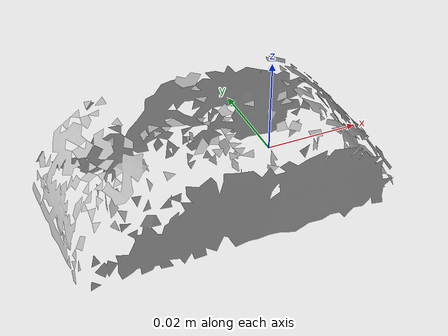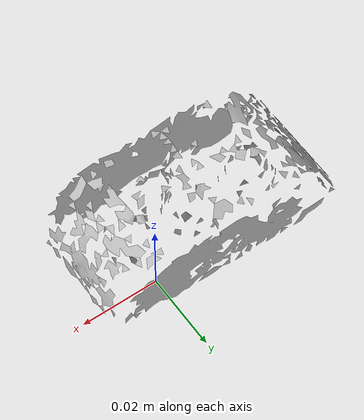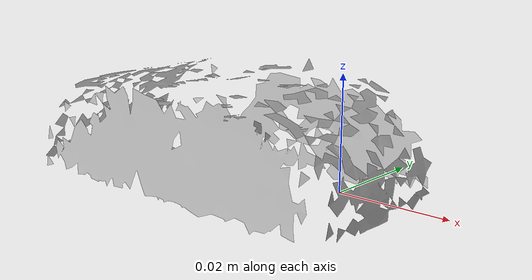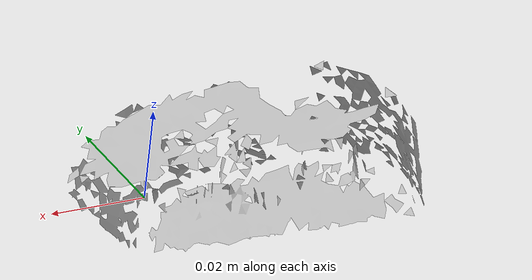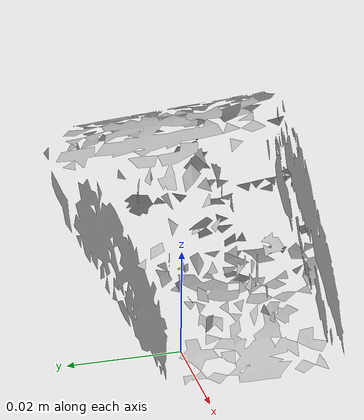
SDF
<?xml version="1.0" ?>
<sdf version="1.4">
  <model name='ycb_073-a_lego_duplo'>
    <link name='body'>
      <inertial>
        <mass>0.0244584560931</mass>
        <pose>-0.0164386760871 -0.00953583253394 0.0121466865126 0 0 0</pose>
        <inertia>
          <ixx>3.07068291546e-06</ixx>
          <ixy>2.87504624992e-08</ixy>
          <ixz>1.5867275428e-08</ixz>
          <iyy>6.85242992535e-06</iyy>
          <iyz>7.33157476295e-09</iyz>
          <izz>8.59817371319e-06</izz>
        </inertia>
      </inertial>
      <visual name='ycb_073-a_lego_duplo_visual'>
        <pose>0 0 0 0 0 0</pose>
        <geometry>
          <mesh>
            <uri>model://ycb_073-a_lego_duplo/meshes/textured.dae</uri>
          </mesh>
        </geometry>
      </visual>
      <collision name='ycb_073-a_lego_duplo_collision'>
        <pose>0 0 0 0 0 0</pose>
        <geometry>
          <mesh>
            <uri>model://ycb_073-a_lego_duplo/meshes/nontextured.stl</uri>
          </mesh>
        </geometry>
        <max_contacts>10</max_contacts>
      </collision>
    </link>
  </model>
</sdf>
